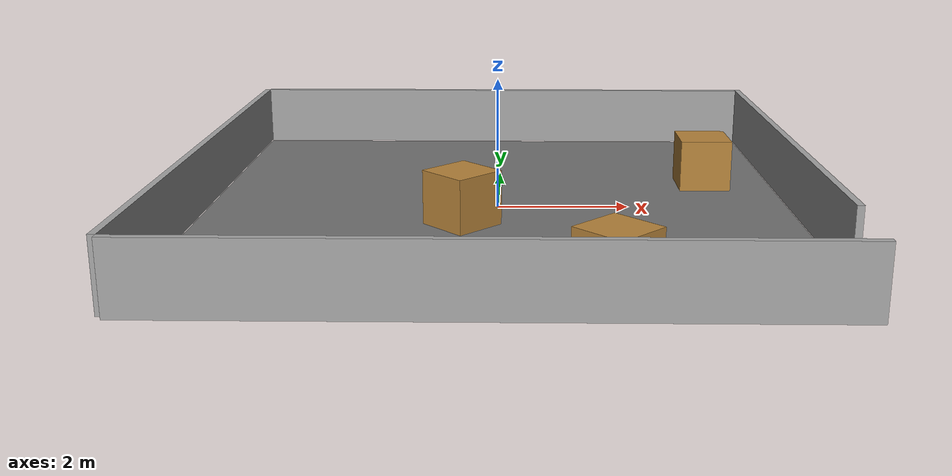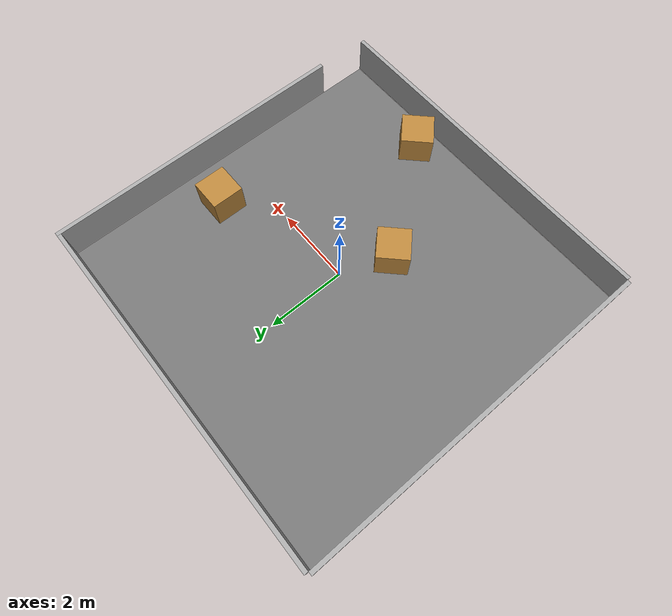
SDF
<sdf version="1.7">
 <world name="CyberWaster_Sim2">
  <plugin filename="libignition-gazebo-physics-system.so" name="ignition::gazebo::systems::Physics"/>
  <plugin filename="libignition-gazebo-scene-broadcaster-system.so" name="ignition::gazebo::systems::SceneBroadcaster"/>
  <light type="directional" name="sun">
   <pose>0 0 10 0 0 0</pose>
   <diffuse>1 1 1 1</diffuse>
   <direction>-0.5 0.1 -0.9</direction>
  </light>
  <model name="ground_floor">
   <static>true</static>
   <link name="link">
    <collision name="collision">
     <geometry><plane><normal>0 0 1</normal><size>9 9</size></plane></geometry>
    </collision>
    <visual name="visual">
     <geometry><plane><normal>0 0 1</normal><size>9 9</size></plane></geometry>
     <material>
      <ambient>0.45 0.45 0.45 1</ambient>
      <diffuse>0.45 0.45 0.45 1</diffuse>
      <specular>0.1 0.1 0.1 1</specular>
     </material>
    </visual>
   </link>
  </model>
  <model name="map_walls">
   <static>true</static>
   <link name="west_wall">
    <pose>0 4.55 0.5 0 0 0</pose>
    <collision name="collision"><geometry><box><size>9 0.1 1.0</size></box></geometry></collision>
    <visual name="visual">
     <geometry><box><size>9 0.1 1.0</size></box></geometry>
     <material>
      <ambient>0.65 0.65 0.65 1</ambient>
      <diffuse>0.65 0.65 0.65 1</diffuse>
      <specular>0.05 0.05 0.05 1</specular>
     </material>
    </visual>
   </link>
   <link name="east_wall">
    <pose>0 -4.55 0.5 0 0 0</pose>
    <collision name="collision"><geometry><box><size>9 0.1 1.0</size></box></geometry></collision>
    <visual name="visual">
     <geometry><box><size>9 0.1 1.0</size></box></geometry>
     <material>
      <ambient>0.65 0.65 0.65 1</ambient>
      <diffuse>0.65 0.65 0.65 1</diffuse>
      <specular>0.05 0.05 0.05 1</specular>
     </material>
    </visual>
   </link>
   <link name="north_wall">
    <pose>4.55 0.7 0.5 0 0 0</pose>
    <collision name="collision"><geometry><box><size>0.1 7.8 1.0</size></box></geometry></collision>
    <visual name="visual">
     <geometry><box><size>0.1 7.8 1.0</size></box></geometry>
     <material>
      <ambient>0.65 0.65 0.65 1</ambient>
      <diffuse>0.65 0.65 0.65 1</diffuse>
      <specular>0.05 0.05 0.05 1</specular>
     </material>
    </visual>
   </link>
   <link name="south_wall">
    <pose>-4.55 0 0.5 0 0 0</pose>
    <collision name="collision"><geometry><box><size>0.1 9 1.0</size></box></geometry></collision>
    <visual name="visual">
     <geometry><box><size>0.1 9 1.0</size></box></geometry>
     <material>
      <ambient>0.65 0.65 0.65 1</ambient>
      <diffuse>0.65 0.65 0.65 1</diffuse>
      <specular>0.05 0.05 0.05 1</specular>
     </material>
    </visual>
   </link>
  </model>
  <model name="box_obstacles">
   <link name="box1">
    <pose>-0.5 -1.2 0.5 0 0 0.7854</pose>
    <collision name="collision"><geometry><box><size>0.8 0.8 0.8</size></box></geometry></collision>
    <visual name="visual">
     <geometry><box><size>0.8 0.8 0.8</size></box></geometry>
     <material>
      <ambient>0.70 0.49 0.22 1</ambient>
      <diffuse>0.72 0.52 0.23 1</diffuse>
      <specular>0.02 0.02 0.02 1</specular>
     </material>
    </visual>
   </link>
   <link name="box2">
    <pose>3.3 1.0 0.5 0 0 0</pose>
    <collision name="collision"><geometry><box><size>0.9 0.9 0.9</size></box></geometry></collision>
    <visual name="visual">
     <geometry><box><size>0.8 0.8 0.8</size></box></geometry>
     <material>
      <ambient>0.70 0.49 0.22 1</ambient>
      <diffuse>0.72 0.52 0.23 1</diffuse>
      <specular>0.02 0.02 0.02 1</specular>
     </material>
    </visual>
   </link>
   <link name="box3">
    <pose>1.5 -3.8 0.5 0 0 0.7854</pose>
    <collision name="collision"><geometry><box><size>0.8 0.8 0.8</size></box></geometry></collision>
    <visual name="visual">
     <geometry><box><size>0.8 0.8 0.8</size></box></geometry>
     <material>
      <ambient>0.70 0.49 0.22 1</ambient>
      <diffuse>0.72 0.52 0.23 1</diffuse>
      <specular>0.02 0.02 0.02 1</specular>
     </material>
    </visual>
   </link>
  </model>
 </world>
</sdf>
